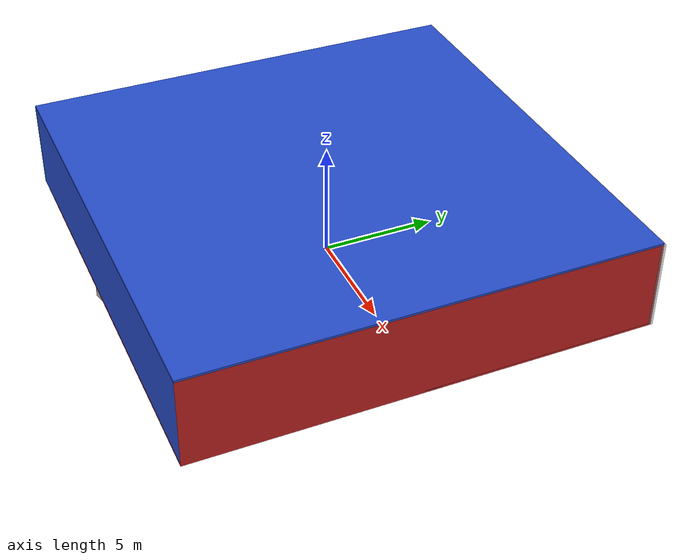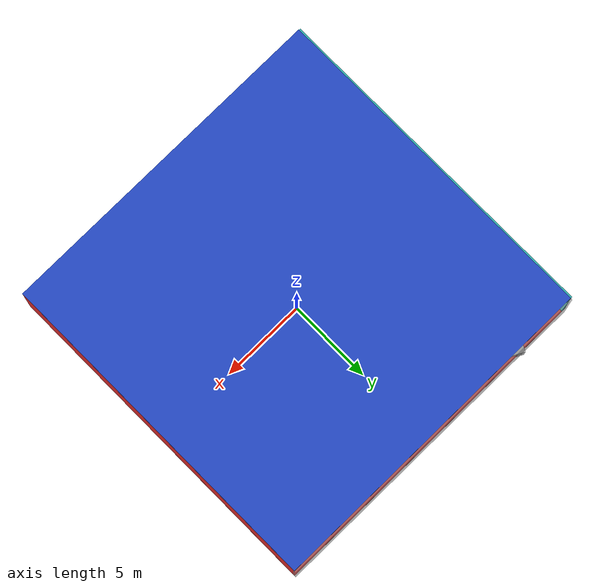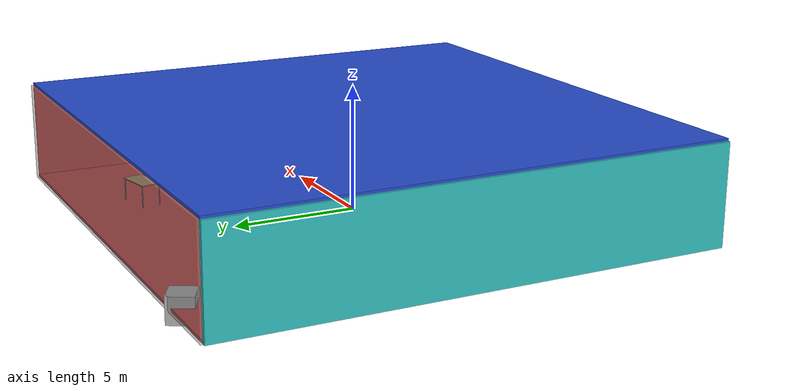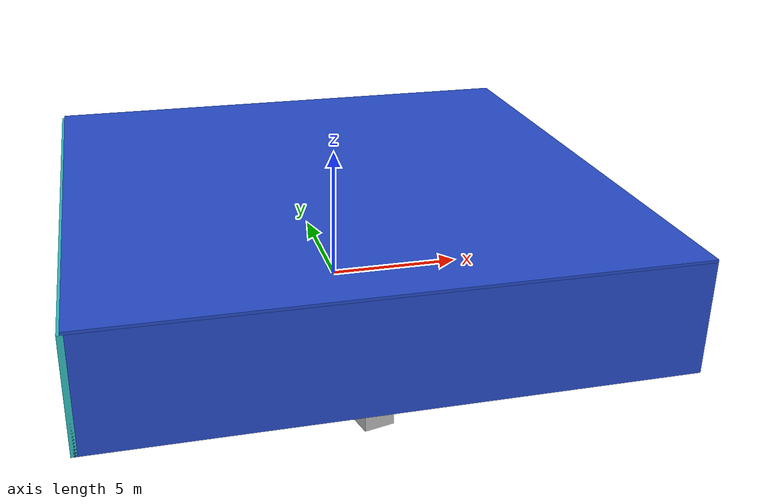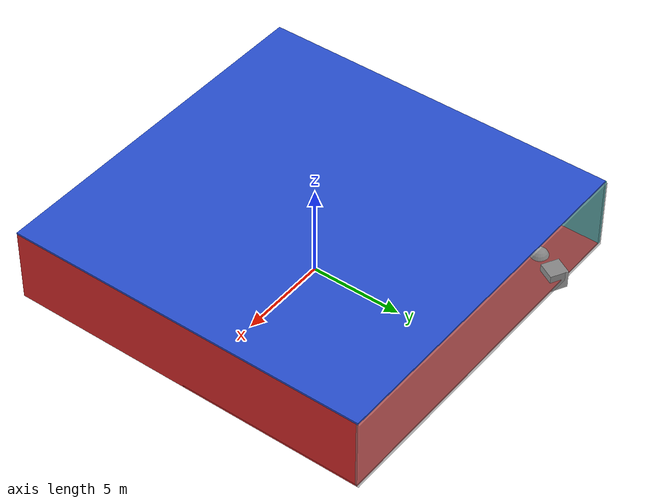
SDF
<sdf version="1.4">
 <world name="default">
  <physics type="ode">
   <max_step_size>0.001</max_step_size>
   <real_time_factor>1</real_time_factor>
   <real_time_update_rate>1000</real_time_update_rate>
   <gravity>0 0 -9.8</gravity>
  </physics>
  <scene><ambient>0.4 0.4 0.4 1</ambient><background>0.7 0.7 0.7 1</background><shadows>1</shadows></scene>
  <model name="Surrounding">
   <static>1</static>
   <link name="Ceiling">
    <collision name="Ceiling_Collision"><geometry><box><size>20 20 0.1</size></box></geometry></collision>
    <visual name="Ceiling_Visual">
     <geometry><box><size>20 20 0.1</size></box></geometry>
     <material>
      <script><uri>file://media/materials/scripts/gazebo.material</uri><name>Gazebo/Blue</name></script>
     </material>
    </visual>
    <pose>0 0 4.05 0 0 0</pose>
   </link>
   <link name="Wall_South">
    <collision name="Wall_South_Collision">
     <geometry><box><size>20 0 4</size></box></geometry>
     <pose>0 0 2 0 -0 0</pose>
    </collision>
    <visual name="Wall_South_Visual">
     <pose>0 0 2 0 -0 0</pose>
     <geometry><box><size>20 0 4</size></box></geometry>
     <material>
      <script><uri>file://media/materials/scripts/gazebo.material</uri><name>Gazebo/BlueGlow</name></script>
     </material>
    </visual>
    <velocity_decay><linear>0</linear><angular>0</angular></velocity_decay>
    <pose>0 -10 0 0 -0 0</pose>
   </link>
   <link name="Wall_East">
    <collision name="Wall_21_Collision">
     <geometry><box><size>20 0 4</size></box></geometry>
     <pose>0 0 2 0 -0 0</pose>
    </collision>
    <visual name="Wall_21_Visual">
     <pose>0 0 2 0 -0 0</pose>
     <geometry><box><size>20 0 4</size></box></geometry>
     <material>
      <script><uri>file://media/materials/scripts/gazebo.material</uri><name>Gazebo/Red</name></script>
     </material>
    </visual>
    <velocity_decay><linear>0</linear><angular>0</angular></velocity_decay>
    <pose>10 0 0 0 -0 1.5708</pose>
   </link>
   <link name="Wall_North">
    <collision name="Wall_22_Collision">
     <geometry><box><size>20 0.2 4</size></box></geometry>
     <pose>0 0 2 0 -0 0</pose>
    </collision>
    <visual name="Wall_22_Visual">
     <pose>0 0 2 0 -0 0</pose>
     <geometry><box><size>20 0.2 4</size></box></geometry>
     <material>
      <script><uri>file://media/materials/scripts/gazebo.material</uri><name>Gazebo/GreyTransparent</name></script>
     </material>
    </visual>
    <velocity_decay><linear>0</linear><angular>0</angular></velocity_decay>
    <pose>0 10 0 0 -0 0</pose>
   </link>
   <link name="Wall_West">
    <collision name="Wall_23_Collision">
     <geometry><box><size>20 0.2 4</size></box></geometry>
     <pose>0 0 2 0 -0 0</pose>
    </collision>
    <visual name="Wall_23_Visual">
     <pose>0 0 2 0 -0 0</pose>
     <geometry><box><size>20 0.2 4</size></box></geometry>
     <material>
      <script><uri>file://media/materials/scripts/gazebo.material</uri><name>Gazebo/TurquoiseGlow</name></script>
     </material>
    </visual>
    <velocity_decay><linear>0</linear><angular>0</angular></velocity_decay>
    <pose>-10 0 0 0 0 -1.5708</pose>
   </link>
   <link name="Ground_link">
    <collision name="collision">
     <pose>0 0 .05 0 -0 0</pose>
     <geometry><box><size>20 20 0.1</size></box></geometry>
    </collision>
    <visual name="visual">
     <pose>0 0 .05 0 -0 0</pose>
     <geometry><box><size>20 20 0.1</size></box></geometry>
     <material>
      <script><uri>file://media/materials/scripts/gazebo.material</uri><name>Gazebo/RedBright</name></script>
     </material>
    </visual>
   </link>
   <static>1</static>
  </model>
  <spherical_coordinates>
   <surface_model>EARTH_WGS84</surface_model>
   <latitude_deg>0</latitude_deg>
   <longitude_deg>0</longitude_deg>
   <elevation>0</elevation>
   <heading_deg>0</heading_deg>
  </spherical_coordinates>
  <light name="lightball_0" type="diffuse">
   <diffuse>0.8 0.8 0.8 1</diffuse>
   <specular>0.2 0.2 0.2 1</specular>
   <attenuation>
    <range>100</range>
    <constant>0.7</constant>
    <linear>0.01</linear>
    <quadratic>0.001</quadratic>
   </attenuation>
   <direction>-0.5 0.1 -0.9</direction>
   <pose>-2.83006423345 -3.40881077487 3.66405618045 0 0 0</pose>
  </light>
  <light name="lightball_1" type="diffuse">
   <diffuse>0.8 0.8 0.8 1</diffuse>
   <specular>0.2 0.2 0.2 1</specular>
   <attenuation>
    <range>100</range>
    <constant>0.7</constant>
    <linear>0.01</linear>
    <quadratic>0.001</quadratic>
   </attenuation>
   <direction>-0.5 0.1 -0.9</direction>
   <pose>1.10287543055 9.44183014706 1.74059902229 0 0 0</pose>
  </light>
  <include>
   <uri>model://textured_shapes</uri>
   <pose>-7.42232650184 8.18487940223 0 0 0 2.65014251755</pose>
  </include>
  <include>
   <uri>model://textured_shapes</uri>
   <pose>-1.33037120064 -7.93179492194 0 0 0 0.232110190354</pose>
  </include>
  <include>
   <uri>model://textured_shapes</uri>
   <pose>-2.38783249853 1.40110076829 0 0 0 0.631679139166</pose>
  </include>
  <include><uri>model://table</uri><pose>1.5512202118 -2.66297756857 0 0 0 0.557193431449</pose></include>
  <include>
   <uri>model://textured_shapes</uri>
   <pose>0.707385749901 2.36623557264 0 0 0 0.330506407721</pose>
  </include>
  <include>
   <uri>model://construction_cone</uri>
   <pose>5.31663037908 4.80968270442 0 0 0 0.496866428197</pose>
  </include>
  <include><uri>model://table</uri><pose>4.25794436305 7.26692832327 0 0 0 0.209127449029</pose></include>
  <include>
   <uri>model://robocup_3Dsim_goal</uri>
   <pose>8.36154705416 -7.47006092396 0 0 0 2.7759975117</pose>
  </include>
  <include><uri>model://cabinet</uri><pose>8.53368037062 -4.39942558416 0 0 0 0.388092358142</pose></include>
 </world>
</sdf>

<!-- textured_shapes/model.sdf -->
<sdf version="1.6">
  <model name="textured_shapes">
    <pose>0 0 0.5 0 0 0</pose>
    <link name="box">
      <pose>0 -1.5 0 0 0 0</pose>
      <collision name="collision">
        <geometry>
          <box>
            <size>1 1 1</size>
          </box>
        </geometry>
      </collision>
      <visual name="visual">
        <geometry>
          <box>
            <size>1 1 1</size>
          </box>
        </geometry>
        <material>
          <script>
            <uri>model://../model_source/models/textured_shapes/materials/scripts</uri>
            <uri>model://../model_source/models/textured_shapes/materials/textures</uri>
            <name>TexturedShape/Squares</name>
          </script>
        </material>
      </visual>
    </link>
    <link name="sphere">
      <collision name="collision">
        <geometry>
          <sphere>
            <radius>0.5</radius>
          </sphere>
        </geometry>
      </collision>
      <visual name="visual">
        <geometry>
          <sphere>
            <radius>0.5</radius>
          </sphere>
        </geometry>
        <material>
          <script>
            <uri>model://../model_source/models/textured_shapes/materials/scripts</uri>
            <uri>model://../model_source/models/textured_shapes/materials/textures</uri>
            <name>TexturedShape/Squares</name>
          </script>
        </material>
      </visual>
    </link>
    <link name="cylinder">
      <pose>0 1.5 0 0 0 0</pose>
      <collision name="collision">
        <geometry>
          <cylinder>
            <radius>0.5</radius>
            <length>1</length>
          </cylinder>
        </geometry>
      </collision>
      <visual name="visual">
        <geometry>
          <cylinder>
            <radius>0.5</radius>
            <length>1</length>
          </cylinder>
        </geometry>
        <material>
          <script>
            <uri>model://../model_source/models/textured_shapes/materials/scripts</uri>
            <uri>model://../model_source/models/textured_shapes/materials/textures</uri>
            <name>TexturedShape/Squares</name>
          </script>
        </material>
      </visual>
    </link>
  </model>
</sdf>

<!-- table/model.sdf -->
<sdf version="1.5">
  <model name="table">
    <static>true</static>
    <link name="link">
      <collision name="surface">
        <pose>0 0 1.0 0 0 0</pose>
        <geometry>
          <box>
            <size>1.5 0.8 0.03</size>
          </box>
        </geometry>
        <surface>
          <friction>
            <ode>
              <mu>0.6</mu>
              <mu2>0.6</mu2>
            </ode>
          </friction>
        </surface>
      </collision>
      <visual name="visual1">
        <pose>0 0 1.0 0 0 0</pose>
        <geometry>
          <box>
            <size>1.5 0.8 0.03</size>
          </box>
        </geometry>
        <material>
          <script>
            <uri>model://media/materials/scripts/gazebo.material</uri>
            <name>Gazebo/Wood</name>
          </script>
        </material>
      </visual>
      <collision name="front_left_leg">
        <pose>0.68 0.38 0.5 0 0 0</pose>
        <geometry>
          <cylinder>
            <radius>0.02</radius>
            <length>1.0</length>
          </cylinder>
        </geometry>
      </collision>
      <visual name="front_left_leg">
        <pose>0.68 0.38 0.5 0 0 0</pose>
        <geometry>
          <cylinder>
            <radius>0.02</radius>
            <length>1.0</length>
          </cylinder>
        </geometry>
        <material>
          <script>
            <uri>model://media/materials/scripts/gazebo.material</uri>
            <name>Gazebo/Grey</name>
          </script>
        </material>
      </visual>
      <collision name="front_right_leg">
        <pose>0.68 -0.38 0.5 0 0 0</pose>
        <geometry>
          <cylinder>
            <radius>0.02</radius>
            <length>1.0</length>
          </cylinder>
        </geometry>
      </collision>
      <visual name="front_right_leg">
        <pose>0.68 -0.38 0.5 0 0 0</pose>
        <geometry>
          <cylinder>
            <radius>0.02</radius>
            <length>1.0</length>
          </cylinder>
        </geometry>
        <material>
          <script>
            <uri>model://media/materials/scripts/gazebo.material</uri>
            <name>Gazebo/Grey</name>
          </script>
        </material>
      </visual>
      <collision name="back_right_leg">
        <pose>-0.68 -0.38 0.5 0 0 0</pose>
        <geometry>
          <cylinder>
            <radius>0.02</radius>
            <length>1.0</length>
          </cylinder>
        </geometry>
      </collision>
      <visual name="back_right_leg">
        <pose>-0.68 -0.38 0.5 0 0 0</pose>
        <geometry>
          <cylinder>
            <radius>0.02</radius>
            <length>1.0</length>
          </cylinder>
        </geometry>
        <material>
          <script>
            <uri>model://media/materials/scripts/gazebo.material</uri>
            <name>Gazebo/Grey</name>
          </script>
        </material>
      </visual>
      <collision name="back_left_leg">
        <pose>-0.68 0.38 0.5 0 0 0</pose>
        <geometry>
          <cylinder>
            <radius>0.02</radius>
            <length>1.0</length>
          </cylinder>
        </geometry>
      </collision>
      <visual name="back_left_leg">
        <pose>-0.68 0.38 0.5 0 0 0</pose>
        <geometry>
          <cylinder>
            <radius>0.02</radius>
            <length>1.0</length>
          </cylinder>
        </geometry>
        <material>
          <script>
            <uri>model://media/materials/scripts/gazebo.material</uri>
            <name>Gazebo/Grey</name>
          </script>
        </material>
      </visual>
    </link>
  </model>
</sdf>

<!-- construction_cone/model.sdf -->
<sdf version="1.5">
  <model name="Construction Cone">
    <link name="link">
      <collision name="collision">
        <geometry>
          <mesh>
            <scale>10 10 10</scale>
            <uri>file://isr-testbed/construction_cone/meshes/construction_cone.dae</uri>
          </mesh>
        </geometry>
      </collision>
      <visual name="visual">
        <geometry>
          <mesh>
            <scale>10 10 10</scale>
            <uri>file://isr-testbed/construction_cone/meshes/construction_cone.dae</uri>
          </mesh>
        </geometry>
      </visual>
    </link>
  </model>
</sdf>

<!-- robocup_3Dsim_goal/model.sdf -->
<sdf version="1.5">
  <model name="robocup_3d_goal">
    <static>true</static>
    <link name="left_post">
      <pose>0 1.05 0.45 0 0 0</pose>
      <collision name="collision">
        <geometry>
          <cylinder>
            <radius>0.05</radius>
            <length>0.9</length>
          </cylinder>
        </geometry>
      </collision>
      <visual name="visual">
        <geometry>
          <cylinder>
            <radius>0.05</radius>
            <length>0.9</length>
          </cylinder>
        </geometry>
        <material>
          <script>
            <uri>file://media/materials/scripts/gazebo.material</uri>
            <name>Gazebo/ZincYellow</name>
          </script>
        </material>
      </visual>
    </link>
    <link name="left_support_horiz_lower">
      <pose>0.30 1.05 0.01 0 0 0</pose>
      <collision name="collision">
        <geometry>
          <box>
            <size>0.50 0.02 0.02</size>
          </box>
        </geometry>
      </collision>
      <visual name="visual">
        <geometry>
          <box>
            <size>0.50 0.02 0.02</size>
          </box>
        </geometry>
        <material>
          <script>
            <uri>file://media/materials/scripts/gazebo.material</uri>
            <name>Gazebo/White</name>
          </script>
        </material>
      </visual>
    </link>
    <link name="left_support_horiz_upper">
      <pose>0.30 1.05 0.79 0 0 0</pose>
      <collision name="collision">
        <geometry>
          <box>
            <size>0.50 0.02 0.02</size>
          </box>
        </geometry>
      </collision>
      <visual name="visual">
        <geometry>
          <box>
            <size>0.50 0.02 0.02</size>
          </box>
        </geometry>
        <material>
          <script>
            <uri>file://media/materials/scripts/gazebo.material</uri>
            <name>Gazebo/White</name>
          </script>
        </material>
      </visual>
    </link>
    <link name="left_support_vertical">
      <pose>0.56 1.05 0.4 0 1.5708 0</pose>
      <collision name="collision">
        <geometry>
          <box>
            <size>0.80 0.02 0.02</size>
          </box>
        </geometry>
      </collision>
      <visual name="visual">
        <geometry>
          <box>
            <size>0.80 0.02 0.02</size>
          </box>
        </geometry>
        <material>
          <script>
            <uri>file://media/materials/scripts/gazebo.material</uri>
            <name>Gazebo/White</name>
          </script>
        </material>
      </visual>
    </link>
    <link name="right_support_horiz_lower">
      <pose>0.30 -1.05 0.01 0 0 0</pose>
      <collision name="collision">
        <geometry>
          <box>
            <size>0.50 0.02 0.02</size>
          </box>
        </geometry>
      </collision>
      <visual name="visual">
        <geometry>
          <box>
            <size>0.50 0.02 0.02</size>
          </box>
        </geometry>
        <material>
          <script>
            <uri>file://media/materials/scripts/gazebo.material</uri>
            <name>Gazebo/White</name>
          </script>
        </material>
      </visual>
    </link>
    <link name="right_support_horiz_upper">
      <pose>0.30 -1.05 0.79 0 0 0</pose>
      <collision name="collision">
        <geometry>
          <box>
            <size>0.50 0.02 0.02</size>
          </box>
        </geometry>
      </collision>
      <visual name="visual">
        <geometry>
          <box>
            <size>0.50 0.02 0.02</size>
          </box>
        </geometry>
        <material>
          <script>
            <uri>file://media/materials/scripts/gazebo.material</uri>
            <name>Gazebo/White</name>
          </script>
        </material>
      </visual>
    </link>
    <link name="right_support_vertical">
      <pose>0.56 -1.05 0.4 0 1.5708 0</pose>
      <collision name="collision">
        <geometry>
          <box>
            <size>0.80 0.02 0.02</size>
          </box>
        </geometry>
      </collision>
      <visual name="visual">
        <geometry>
          <box>
            <size>0.80 0.02 0.02</size>
          </box>
        </geometry>
        <material>
          <script>
            <uri>file://media/materials/scripts/gazebo.material</uri>
            <name>Gazebo/White</name>
          </script>
        </material>
      </visual>
    </link>
    <link name="center_support_horiz_lower">
      <pose>0.56 0 0.01 0 1.5708 0</pose>
      <collision name="collision">
        <geometry>
          <box>
            <size>0.02 2.08 0.02</size>
          </box>
        </geometry>
      </collision>
      <visual name="visual">
        <geometry>
          <box>
            <size>0.02 2.08 0.02</size>
          </box>
        </geometry>
        <material>
          <script>
            <uri>file://media/materials/scripts/gazebo.material</uri>
            <name>Gazebo/White</name>
          </script>
        </material>
      </visual>
    </link>
    <link name="center_support_horiz_upper">
      <pose>0.56 0 0.79 0 1.5708 0</pose>
      <collision name="collision">
        <geometry>
          <box>
            <size>0.02 2.08 0.02</size>
          </box>
        </geometry>
      </collision>
      <visual name="visual">
        <geometry>
          <box>
            <size>0.02 2.08 0.02</size>
          </box>
        </geometry>
        <material>
          <script>
            <uri>file://media/materials/scripts/gazebo.material</uri>
            <name>Gazebo/White</name>
          </script>
        </material>
      </visual>
    </link>
    <link name="right_post">
      <pose>0 -1.05 0.45 0 0 0</pose>
      <collision name="collision">
        <geometry>
          <cylinder>
            <radius>0.05</radius>
            <length>0.9</length>
          </cylinder>
        </geometry>
      </collision>
      <visual name="visual">
        <geometry>
          <cylinder>
            <radius>0.05</radius>
            <length>0.9</length>
          </cylinder>
        </geometry>
        <material>
          <script>
            <uri>file://media/materials/scripts/gazebo.material</uri>
            <name>Gazebo/ZincYellow</name>
          </script>
        </material>
      </visual>
    </link>
    <link name="crossbar">
      <pose>0 0 0.85 1.57 1.57 0</pose>
      <collision name="collision">
        <geometry>
          <cylinder>
            <radius>0.05</radius>
            <length>2.0</length>
          </cylinder>
        </geometry>
      </collision>
      <visual name="visual">
        <geometry>
          <cylinder>
            <radius>0.05</radius>
            <length>2.0</length>
          </cylinder>
        </geometry>
        <material>
          <script>
            <uri>file://media/materials/scripts/gazebo.material</uri>
            <name>Gazebo/ZincYellow</name>
          </script>
        </material>
      </visual>
    </link>
    <link name="center_net">
      <pose>0.56 0 0.40 0 0 0</pose>
      <collision name="collision">
        <geometry>
          <box>
            <size>0.01 2.1 0.80</size>
          </box>
        </geometry>
      </collision>
      <visual name="visual">
        <geometry>
          <box>
            <size>0.01 2.1 0.80</size>
          </box>
        </geometry>
        <material>
          <script>
            <uri>model://../model_source/models/robocup09_spl_field/materials/scripts/</uri>
            <uri>model://../model_source/models/robocup09_spl_field/materials/textures/</uri>
            <name>RoboCup/Net</name>
          </script>
        </material>
      </visual>
    </link>
    <link name="left_net">
      <pose>0.30 1.05 0.40 0 0 0</pose>
      <collision name="collision">
        <geometry>
          <box>
            <size>0.50 0.01 0.76</size>
          </box>
        </geometry>
      </collision>
      <visual name="visual">
        <geometry>
          <box>
            <size>0.50 0.01 0.76</size>
          </box>
        </geometry>
        <material>
          <script>
            <uri>model://../model_source/models/robocup09_spl_field/materials/scripts/</uri>
            <uri>model://../model_source/models/robocup09_spl_field/materials/textures/</uri>
            <name>RoboCup/Net</name>
          </script>
        </material>
      </visual>
    </link>
    <link name="right_net">
      <pose>0.30 -1.05 0.40 0 0 0</pose>
      <collision name="collision">
        <geometry>
          <box>
            <size>0.50 0.01 0.76</size>
          </box>
        </geometry>
      </collision>
      <visual name="visual">
        <geometry>
          <box>
            <size>0.50 0.01 0.76</size>
          </box>
        </geometry>
        <material>
          <script>
            <uri>model://../model_source/models/robocup09_spl_field/materials/scripts/</uri>
            <uri>model://../model_source/models/robocup09_spl_field/materials/textures/</uri>
            <name>RoboCup/Net</name>
          </script>
        </material>
      </visual>
    </link>
  </model>
</sdf>

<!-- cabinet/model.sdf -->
<sdf version="1.5">
  <model name="cabinet">
    <static>true</static>
    <link name="cabinet_bottom_plate">
      <inertial>
        <pose>0 0 -1 0 0 0</pose>
        <inertia>
          <ixx>2.050000</ixx>
          <ixy>0</ixy>
          <ixz>0</ixz>
          <iyy>2.050000</iyy>
          <iyz>0</iyz>
          <izz>2.050000</izz>
        </inertia>
        <mass>25.000000</mass>
      </inertial>
      <collision name="cabinet_bottom_plate_geom">
        <pose>0 0 0.010000 0 0 0</pose>
        <geometry>
          <box>
            <size>0.450000 0.450000 0.020000</size>
          </box>
        </geometry>
      </collision>
      <visual name="cabinet_bottom_plate_geom_visual">
        <pose>0 0 0.010000 0 0 0</pose>
        <geometry>
          <box>
            <size>0.450000 0.450000 0.020000</size>
          </box>
        </geometry>
        <material>
          <script>
            <uri>model://media/materials/scripts/gazebo.material</uri>
            <name>Gazebo/Wood</name>
          </script>
        </material>
      </visual>
      <collision name="cabinet_bottom_plate_geom_cabinet_back_plate">
        <pose>0.235000 0 0.510000 0 0 0</pose>
        <geometry>
          <box>
            <size>0.020000 0.450000 1.020000</size>
          </box>
        </geometry>
      </collision>
      <visual name="cabinet_bottom_plate_geom_cabinet_back_plate_visual">
        <pose>0.235000 0 0.510000 0 0 0</pose>
        <geometry>
          <box>
            <size>0.020000 0.450000 1.020000</size>
          </box>
        </geometry>
        <material>
          <script>
            <uri>model://media/materials/scripts/gazebo.material</uri>
            <name>Gazebo/Wood</name>
          </script>
        </material>
      </visual>
      <collision name="cabinet_bottom_plate_geom_cabinet_left_plate">
        <pose>0 0.235000 0.510000 0 0 0</pose>
        <geometry>
          <box>
            <size>0.450000 0.020000 1.020000</size>
          </box>
        </geometry>
      </collision>
      <visual name="cabinet_bottom_plate_geom_cabinet_left_plate_visual">
        <pose>0 0.235000 0.510000 0 0 0</pose>
        <geometry>
          <box>
            <size>0.450000 0.020000 1.020000</size>
          </box>
        </geometry>
        <material>
          <script>
            <uri>model://media/materials/scripts/gazebo.material</uri>
            <name>Gazebo/Wood</name>
          </script>
        </material>
      </visual>
      <collision name="cabinet_bottom_plate_geom_cabinet_middle_plate">
        <pose>0 0 0.510000 0 0 0</pose>
        <geometry>
          <box>
            <size>0.450000 0.450000 0.020000</size>
          </box>
        </geometry>
      </collision>
      <visual name="cabinet_bottom_plate_geom_cabinet_middle_plate_visual">
        <pose>0 0 0.510000 0 0 0</pose>
        <geometry>
          <box>
            <size>0.450000 0.450000 0.020000</size>
          </box>
        </geometry>
        <material>
          <script>
            <uri>model://media/materials/scripts/gazebo.material</uri>
            <name>Gazebo/Wood</name>
          </script>
        </material>
      </visual>
      <collision name="cabinet_bottom_plate_geom_cabinet_right_plate">
        <pose>0 -0.235000 0.510000 0 0 0</pose>
        <geometry>
          <box>
            <size>0.450000 0.020000 1.020000</size>
          </box>
        </geometry>
      </collision>
      <visual name="cabinet_bottom_plate_geom_cabinet_right_plate_visual">
        <pose>0 -0.235000 0.510000 0 0 0</pose>
        <geometry>
          <box>
            <size>0.450000 0.020000 1.020000</size>
          </box>
        </geometry>
        <material>
          <script>
            <uri>model://media/materials/scripts/gazebo.material</uri>
            <name>Gazebo/Wood</name>
          </script>
        </material>
      </visual>
      <collision name="cabinet_bottom_plate_geom_cabinet_top_plate">
        <pose>0 0 1.010000 0 0 0</pose>
        <geometry>
          <box>
            <size>0.450000 0.450000 0.020000</size>
          </box>
        </geometry>
      </collision>
      <visual name="cabinet_bottom_plate_geom_cabinet_top_plate_visual">
        <pose>0 0 1.010000 0 0 0</pose>
        <geometry>
          <box>
            <size>0.450000 0.450000 0.020000</size>
          </box>
        </geometry>
        <material>
          <script>
            <uri>model://media/materials/scripts/gazebo.material</uri>
            <name>Gazebo/Wood</name>
          </script>
        </material>
      </visual>
    </link>
  </model>
</sdf>
